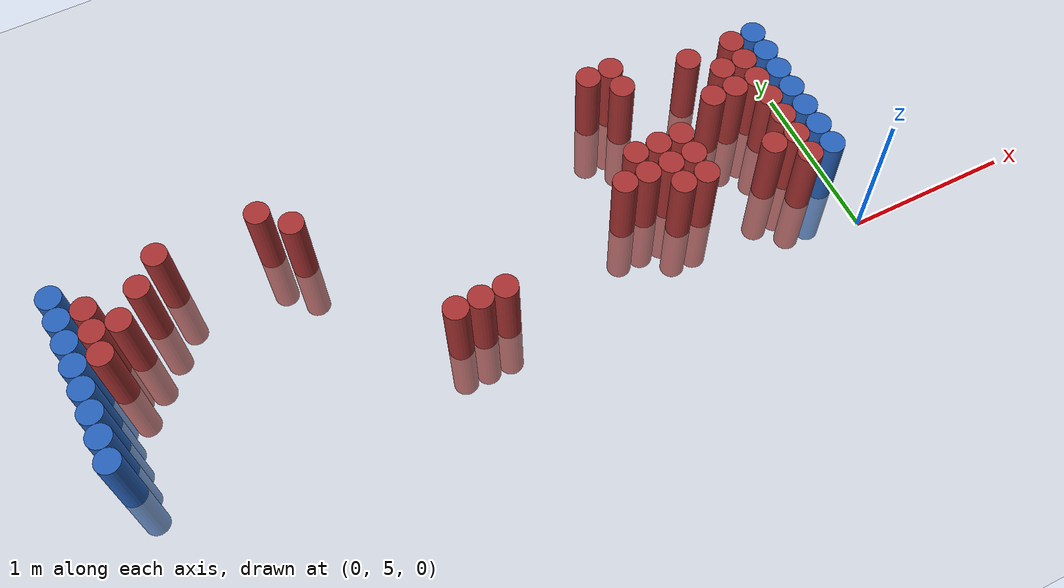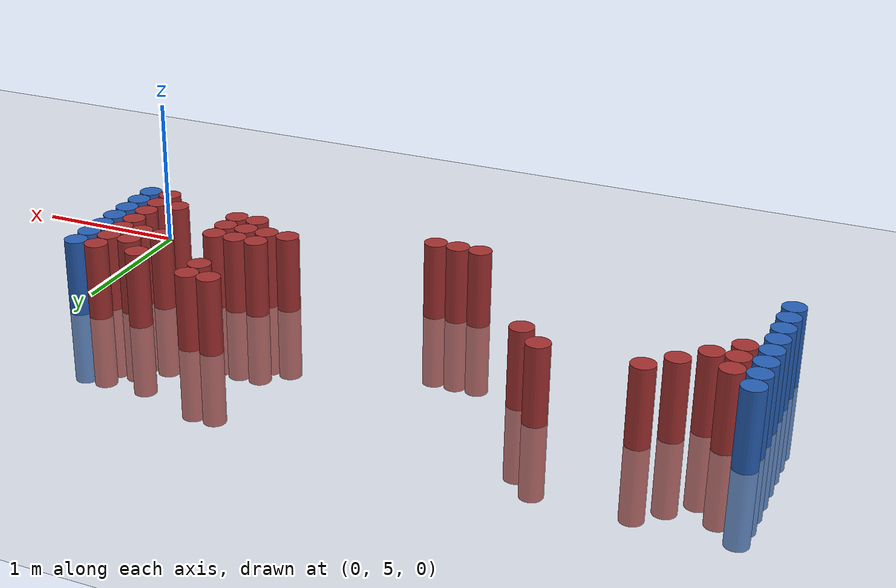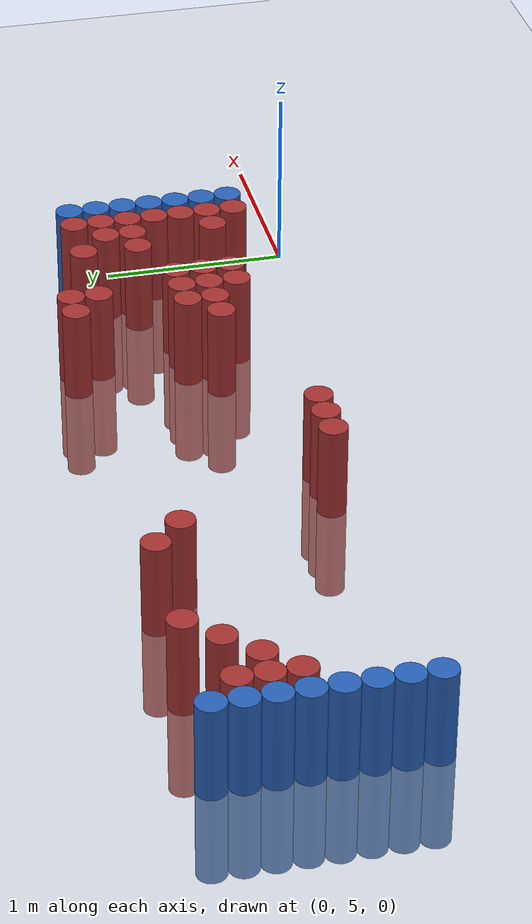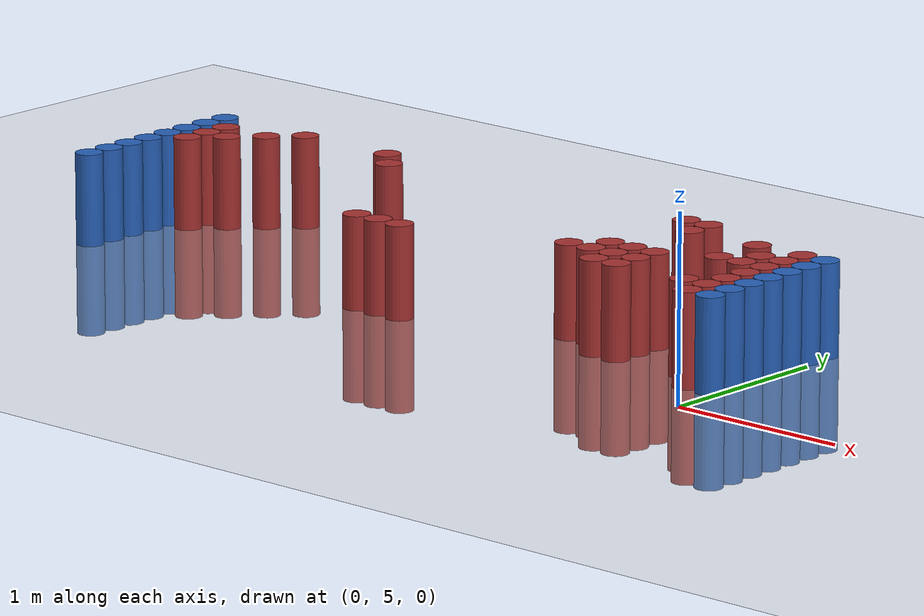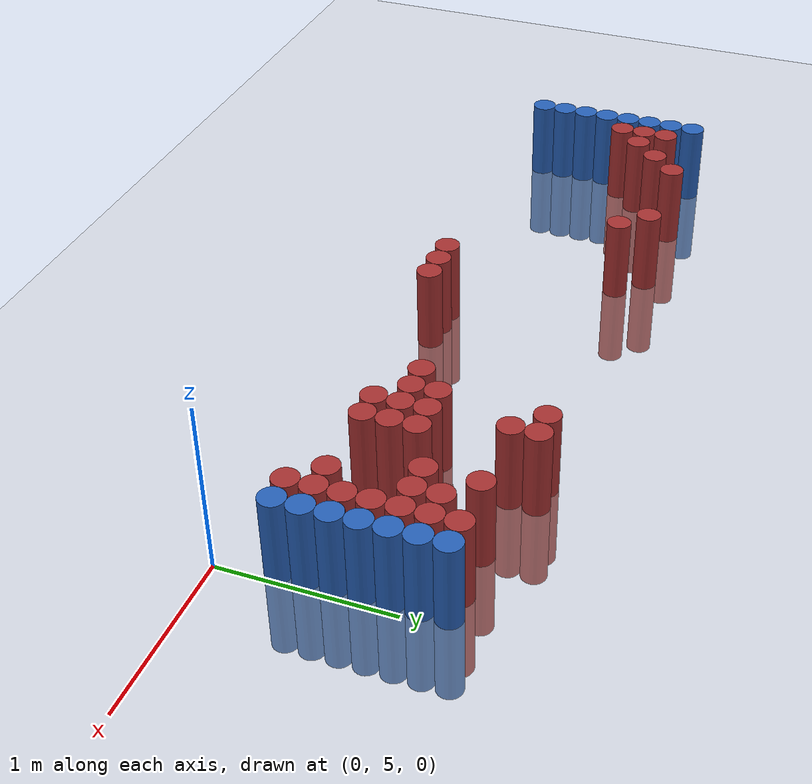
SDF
<sdf version="1.6">
 <world name="default">
  <model name="ground_plane">
   <static>1</static>
   <link name="link">
    <collision name="collision">
     <geometry><plane><normal>0 0 1</normal><size>100 100</size></plane></geometry>
     <surface><friction><ode><mu>100</mu><mu2>50</mu2></ode></friction></surface>
    </collision>
    <visual name="visual">
     <cast_shadows>0</cast_shadows>
     <geometry><plane><normal>0 0 1</normal><size>100 100</size></plane></geometry>
     <material>
      <script><uri>file://media/materials/scripts/gazebo.material</uri><name>Gazebo/Grey</name></script>
     </material>
    </visual>
   </link>
  </model>
  <model name="unit_cylinder_97">
   <static>1</static>
   <pose>-4.425000 5.325000 0.000000 0.000000 0.000000 0.000000</pose>
   <link name="link">
    <inertial>
     <mass>1</mass>
     <inertia><ixx>0.145833</ixx><ixy>0</ixy><ixz>0</ixz><iyy>0.145833</iyy><iyz>0</iyz><izz>0.125</izz></inertia>
    </inertial>
    <collision name="collision">
     <geometry><cylinder><radius>0.075000</radius><length>1</length></cylinder></geometry>
    </collision>
    <visual name="visual">
     <geometry><cylinder><radius>0.075000</radius><length>1</length></cylinder></geometry>
     <material>
      <ambient>0.152000 0.379000 0.720000 1</ambient>
      <diffuse>0.152000 0.379000 0.720000 1</diffuse>
     </material>
     <material>
      <script><name>Gazebo/Grey</name><uri>file://media/materials/scripts/gazebo.material</uri></script>
     </material>
    </visual>
   </link>
  </model>
  <model name="unit_cylinder_98">
   <static>1</static>
   <pose>-4.425000 5.475000 0.000000 0.000000 0.000000 0.000000</pose>
   <link name="link">
    <inertial>
     <mass>1</mass>
     <inertia><ixx>0.145833</ixx><ixy>0</ixy><ixz>0</ixz><iyy>0.145833</iyy><iyz>0</iyz><izz>0.125</izz></inertia>
    </inertial>
    <collision name="collision">
     <geometry><cylinder><radius>0.075000</radius><length>1</length></cylinder></geometry>
    </collision>
    <visual name="visual">
     <geometry><cylinder><radius>0.075000</radius><length>1</length></cylinder></geometry>
     <material>
      <ambient>0.152000 0.379000 0.720000 1</ambient>
      <diffuse>0.152000 0.379000 0.720000 1</diffuse>
     </material>
     <material>
      <script><name>Gazebo/Grey</name><uri>file://media/materials/scripts/gazebo.material</uri></script>
     </material>
    </visual>
   </link>
  </model>
  <model name="unit_cylinder_99">
   <static>1</static>
   <pose>-4.425000 5.625000 0.000000 0.000000 0.000000 0.000000</pose>
   <link name="link">
    <inertial>
     <mass>1</mass>
     <inertia><ixx>0.145833</ixx><ixy>0</ixy><ixz>0</ixz><iyy>0.145833</iyy><iyz>0</iyz><izz>0.125</izz></inertia>
    </inertial>
    <collision name="collision">
     <geometry><cylinder><radius>0.075000</radius><length>1</length></cylinder></geometry>
    </collision>
    <visual name="visual">
     <geometry><cylinder><radius>0.075000</radius><length>1</length></cylinder></geometry>
     <material>
      <ambient>0.152000 0.379000 0.720000 1</ambient>
      <diffuse>0.152000 0.379000 0.720000 1</diffuse>
     </material>
     <material>
      <script><name>Gazebo/Grey</name><uri>file://media/materials/scripts/gazebo.material</uri></script>
     </material>
    </visual>
   </link>
  </model>
  <model name="unit_cylinder_100">
   <static>1</static>
   <pose>-4.425000 5.775000 0.000000 0.000000 0.000000 0.000000</pose>
   <link name="link">
    <inertial>
     <mass>1</mass>
     <inertia><ixx>0.145833</ixx><ixy>0</ixy><ixz>0</ixz><iyy>0.145833</iyy><iyz>0</iyz><izz>0.125</izz></inertia>
    </inertial>
    <collision name="collision">
     <geometry><cylinder><radius>0.075000</radius><length>1</length></cylinder></geometry>
    </collision>
    <visual name="visual">
     <geometry><cylinder><radius>0.075000</radius><length>1</length></cylinder></geometry>
     <material>
      <ambient>0.152000 0.379000 0.720000 1</ambient>
      <diffuse>0.152000 0.379000 0.720000 1</diffuse>
     </material>
     <material>
      <script><name>Gazebo/Grey</name><uri>file://media/materials/scripts/gazebo.material</uri></script>
     </material>
    </visual>
   </link>
  </model>
  <model name="unit_cylinder_101">
   <static>1</static>
   <pose>-4.425000 5.925000 0.000000 0.000000 0.000000 0.000000</pose>
   <link name="link">
    <inertial>
     <mass>1</mass>
     <inertia><ixx>0.145833</ixx><ixy>0</ixy><ixz>0</ixz><iyy>0.145833</iyy><iyz>0</iyz><izz>0.125</izz></inertia>
    </inertial>
    <collision name="collision">
     <geometry><cylinder><radius>0.075000</radius><length>1</length></cylinder></geometry>
    </collision>
    <visual name="visual">
     <geometry><cylinder><radius>0.075000</radius><length>1</length></cylinder></geometry>
     <material>
      <ambient>0.152000 0.379000 0.720000 1</ambient>
      <diffuse>0.152000 0.379000 0.720000 1</diffuse>
     </material>
     <material>
      <script><name>Gazebo/Grey</name><uri>file://media/materials/scripts/gazebo.material</uri></script>
     </material>
    </visual>
   </link>
  </model>
  <model name="unit_cylinder_102">
   <static>1</static>
   <pose>-4.425000 6.075000 0.000000 0.000000 0.000000 0.000000</pose>
   <link name="link">
    <inertial>
     <mass>1</mass>
     <inertia><ixx>0.145833</ixx><ixy>0</ixy><ixz>0</ixz><iyy>0.145833</iyy><iyz>0</iyz><izz>0.125</izz></inertia>
    </inertial>
    <collision name="collision">
     <geometry><cylinder><radius>0.075000</radius><length>1</length></cylinder></geometry>
    </collision>
    <visual name="visual">
     <geometry><cylinder><radius>0.075000</radius><length>1</length></cylinder></geometry>
     <material>
      <ambient>0.152000 0.379000 0.720000 1</ambient>
      <diffuse>0.152000 0.379000 0.720000 1</diffuse>
     </material>
     <material>
      <script><name>Gazebo/Grey</name><uri>file://media/materials/scripts/gazebo.material</uri></script>
     </material>
    </visual>
   </link>
  </model>
  <model name="unit_cylinder_103">
   <static>1</static>
   <pose>-4.425000 6.225000 0.000000 0.000000 0.000000 0.000000</pose>
   <link name="link">
    <inertial>
     <mass>1</mass>
     <inertia><ixx>0.145833</ixx><ixy>0</ixy><ixz>0</ixz><iyy>0.145833</iyy><iyz>0</iyz><izz>0.125</izz></inertia>
    </inertial>
    <collision name="collision">
     <geometry><cylinder><radius>0.075000</radius><length>1</length></cylinder></geometry>
    </collision>
    <visual name="visual">
     <geometry><cylinder><radius>0.075000</radius><length>1</length></cylinder></geometry>
     <material>
      <ambient>0.152000 0.379000 0.720000 1</ambient>
      <diffuse>0.152000 0.379000 0.720000 1</diffuse>
     </material>
     <material>
      <script><name>Gazebo/Grey</name><uri>file://media/materials/scripts/gazebo.material</uri></script>
     </material>
    </visual>
   </link>
  </model>
  <model name="unit_cylinder_104">
   <static>1</static>
   <pose>-4.425000 6.375000 0.000000 0.000000 0.000000 0.000000</pose>
   <link name="link">
    <inertial>
     <mass>1</mass>
     <inertia><ixx>0.145833</ixx><ixy>0</ixy><ixz>0</ixz><iyy>0.145833</iyy><iyz>0</iyz><izz>0.125</izz></inertia>
    </inertial>
    <collision name="collision">
     <geometry><cylinder><radius>0.075000</radius><length>1</length></cylinder></geometry>
    </collision>
    <visual name="visual">
     <geometry><cylinder><radius>0.075000</radius><length>1</length></cylinder></geometry>
     <material>
      <ambient>0.152000 0.379000 0.720000 1</ambient>
      <diffuse>0.152000 0.379000 0.720000 1</diffuse>
     </material>
     <material>
      <script><name>Gazebo/Grey</name><uri>file://media/materials/scripts/gazebo.material</uri></script>
     </material>
    </visual>
   </link>
  </model>
  <model name="unit_cylinder_126">
   <static>1</static>
   <pose>-4.275000 5.925000 0.000000 0.000000 0.000000 0.000000</pose>
   <link name="link">
    <inertial>
     <mass>1</mass>
     <inertia><ixx>0.145833</ixx><ixy>0</ixy><ixz>0</ixz><iyy>0.145833</iyy><iyz>0</iyz><izz>0.125</izz></inertia>
    </inertial>
    <collision name="collision">
     <geometry><cylinder><radius>0.075000</radius><length>1</length></cylinder></geometry>
    </collision>
    <visual name="visual">
     <geometry><cylinder><radius>0.075000</radius><length>1</length></cylinder></geometry>
     <material>
      <ambient>0.648000 0.192000 0.192000 1</ambient>
      <diffuse>0.648000 0.192000 0.192000 1</diffuse>
     </material>
     <material>
      <script><name>Gazebo/Grey</name><uri>file://media/materials/scripts/gazebo.material</uri></script>
     </material>
    </visual>
   </link>
  </model>
  <model name="unit_cylinder_127">
   <static>1</static>
   <pose>-4.275000 6.075000 0.000000 0.000000 0.000000 0.000000</pose>
   <link name="link">
    <inertial>
     <mass>1</mass>
     <inertia><ixx>0.145833</ixx><ixy>0</ixy><ixz>0</ixz><iyy>0.145833</iyy><iyz>0</iyz><izz>0.125</izz></inertia>
    </inertial>
    <collision name="collision">
     <geometry><cylinder><radius>0.075000</radius><length>1</length></cylinder></geometry>
    </collision>
    <visual name="visual">
     <geometry><cylinder><radius>0.075000</radius><length>1</length></cylinder></geometry>
     <material>
      <ambient>0.648000 0.192000 0.192000 1</ambient>
      <diffuse>0.648000 0.192000 0.192000 1</diffuse>
     </material>
     <material>
      <script><name>Gazebo/Grey</name><uri>file://media/materials/scripts/gazebo.material</uri></script>
     </material>
    </visual>
   </link>
  </model>
  <model name="unit_cylinder_128">
   <static>1</static>
   <pose>-4.275000 6.225000 0.000000 0.000000 0.000000 0.000000</pose>
   <link name="link">
    <inertial>
     <mass>1</mass>
     <inertia><ixx>0.145833</ixx><ixy>0</ixy><ixz>0</ixz><iyy>0.145833</iyy><iyz>0</iyz><izz>0.125</izz></inertia>
    </inertial>
    <collision name="collision">
     <geometry><cylinder><radius>0.075000</radius><length>1</length></cylinder></geometry>
    </collision>
    <visual name="visual">
     <geometry><cylinder><radius>0.075000</radius><length>1</length></cylinder></geometry>
     <material>
      <ambient>0.648000 0.192000 0.192000 1</ambient>
      <diffuse>0.648000 0.192000 0.192000 1</diffuse>
     </material>
     <material>
      <script><name>Gazebo/Grey</name><uri>file://media/materials/scripts/gazebo.material</uri></script>
     </material>
    </visual>
   </link>
  </model>
  <model name="unit_cylinder_139">
   <static>1</static>
   <pose>-4.125000 6.075000 0.000000 0.000000 0.000000 0.000000</pose>
   <link name="link">
    <inertial>
     <mass>1</mass>
     <inertia><ixx>0.145833</ixx><ixy>0</ixy><ixz>0</ixz><iyy>0.145833</iyy><iyz>0</iyz><izz>0.125</izz></inertia>
    </inertial>
    <collision name="collision">
     <geometry><cylinder><radius>0.075000</radius><length>1</length></cylinder></geometry>
    </collision>
    <visual name="visual">
     <geometry><cylinder><radius>0.075000</radius><length>1</length></cylinder></geometry>
     <material>
      <ambient>0.648000 0.192000 0.192000 1</ambient>
      <diffuse>0.648000 0.192000 0.192000 1</diffuse>
     </material>
     <material>
      <script><name>Gazebo/Grey</name><uri>file://media/materials/scripts/gazebo.material</uri></script>
     </material>
    </visual>
   </link>
  </model>
  <model name="unit_cylinder_145">
   <static>1</static>
   <pose>-3.975000 6.225000 0.000000 0.000000 0.000000 0.000000</pose>
   <link name="link">
    <inertial>
     <mass>1</mass>
     <inertia><ixx>0.145833</ixx><ixy>0</ixy><ixz>0</ixz><iyy>0.145833</iyy><iyz>0</iyz><izz>0.125</izz></inertia>
    </inertial>
    <collision name="collision">
     <geometry><cylinder><radius>0.075000</radius><length>1</length></cylinder></geometry>
    </collision>
    <visual name="visual">
     <geometry><cylinder><radius>0.075000</radius><length>1</length></cylinder></geometry>
     <material>
      <ambient>0.648000 0.192000 0.192000 1</ambient>
      <diffuse>0.648000 0.192000 0.192000 1</diffuse>
     </material>
     <material>
      <script><name>Gazebo/Grey</name><uri>file://media/materials/scripts/gazebo.material</uri></script>
     </material>
    </visual>
   </link>
  </model>
  <model name="unit_cylinder_149">
   <static>1</static>
   <pose>-3.825000 6.375000 0.000000 0.000000 0.000000 0.000000</pose>
   <link name="link">
    <inertial>
     <mass>1</mass>
     <inertia><ixx>0.145833</ixx><ixy>0</ixy><ixz>0</ixz><iyy>0.145833</iyy><iyz>0</iyz><izz>0.125</izz></inertia>
    </inertial>
    <collision name="collision">
     <geometry><cylinder><radius>0.075000</radius><length>1</length></cylinder></geometry>
    </collision>
    <visual name="visual">
     <geometry><cylinder><radius>0.075000</radius><length>1</length></cylinder></geometry>
     <material>
      <ambient>0.648000 0.192000 0.192000 1</ambient>
      <diffuse>0.648000 0.192000 0.192000 1</diffuse>
     </material>
     <material>
      <script><name>Gazebo/Grey</name><uri>file://media/materials/scripts/gazebo.material</uri></script>
     </material>
    </visual>
   </link>
  </model>
  <model name="unit_cylinder_169">
   <static>1</static>
   <pose>-3.225000 6.375000 0.000000 0.000000 0.000000 0.000000</pose>
   <link name="link">
    <inertial>
     <mass>1</mass>
     <inertia><ixx>0.145833</ixx><ixy>0</ixy><ixz>0</ixz><iyy>0.145833</iyy><iyz>0</iyz><izz>0.125</izz></inertia>
    </inertial>
    <collision name="collision">
     <geometry><cylinder><radius>0.075000</radius><length>1</length></cylinder></geometry>
    </collision>
    <visual name="visual">
     <geometry><cylinder><radius>0.075000</radius><length>1</length></cylinder></geometry>
     <material>
      <ambient>0.648000 0.192000 0.192000 1</ambient>
      <diffuse>0.648000 0.192000 0.192000 1</diffuse>
     </material>
     <material>
      <script><name>Gazebo/Grey</name><uri>file://media/materials/scripts/gazebo.material</uri></script>
     </material>
    </visual>
   </link>
  </model>
  <model name="unit_cylinder_170">
   <static>1</static>
   <pose>-3.075000 6.225000 0.000000 0.000000 0.000000 0.000000</pose>
   <link name="link">
    <inertial>
     <mass>1</mass>
     <inertia><ixx>0.145833</ixx><ixy>0</ixy><ixz>0</ixz><iyy>0.145833</iyy><iyz>0</iyz><izz>0.125</izz></inertia>
    </inertial>
    <collision name="collision">
     <geometry><cylinder><radius>0.075000</radius><length>1</length></cylinder></geometry>
    </collision>
    <visual name="visual">
     <geometry><cylinder><radius>0.075000</radius><length>1</length></cylinder></geometry>
     <material>
      <ambient>0.648000 0.192000 0.192000 1</ambient>
      <diffuse>0.648000 0.192000 0.192000 1</diffuse>
     </material>
     <material>
      <script><name>Gazebo/Grey</name><uri>file://media/materials/scripts/gazebo.material</uri></script>
     </material>
    </visual>
   </link>
  </model>
  <model name="unit_cylinder_173">
   <static>1</static>
   <pose>-2.475000 5.325000 0.000000 0.000000 0.000000 0.000000</pose>
   <link name="link">
    <inertial>
     <mass>1</mass>
     <inertia><ixx>0.145833</ixx><ixy>0</ixy><ixz>0</ixz><iyy>0.145833</iyy><iyz>0</iyz><izz>0.125</izz></inertia>
    </inertial>
    <collision name="collision">
     <geometry><cylinder><radius>0.075000</radius><length>1</length></cylinder></geometry>
    </collision>
    <visual name="visual">
     <geometry><cylinder><radius>0.075000</radius><length>1</length></cylinder></geometry>
     <material>
      <ambient>0.648000 0.192000 0.192000 1</ambient>
      <diffuse>0.648000 0.192000 0.192000 1</diffuse>
     </material>
     <material>
      <script><name>Gazebo/Grey</name><uri>file://media/materials/scripts/gazebo.material</uri></script>
     </material>
    </visual>
   </link>
  </model>
  <model name="unit_cylinder_176">
   <static>1</static>
   <pose>-2.325000 5.325000 0.000000 0.000000 0.000000 0.000000</pose>
   <link name="link">
    <inertial>
     <mass>1</mass>
     <inertia><ixx>0.145833</ixx><ixy>0</ixy><ixz>0</ixz><iyy>0.145833</iyy><iyz>0</iyz><izz>0.125</izz></inertia>
    </inertial>
    <collision name="collision">
     <geometry><cylinder><radius>0.075000</radius><length>1</length></cylinder></geometry>
    </collision>
    <visual name="visual">
     <geometry><cylinder><radius>0.075000</radius><length>1</length></cylinder></geometry>
     <material>
      <ambient>0.648000 0.192000 0.192000 1</ambient>
      <diffuse>0.648000 0.192000 0.192000 1</diffuse>
     </material>
     <material>
      <script><name>Gazebo/Grey</name><uri>file://media/materials/scripts/gazebo.material</uri></script>
     </material>
    </visual>
   </link>
  </model>
  <model name="unit_cylinder_179">
   <static>1</static>
   <pose>-2.175000 5.325000 0.000000 0.000000 0.000000 0.000000</pose>
   <link name="link">
    <inertial>
     <mass>1</mass>
     <inertia><ixx>0.145833</ixx><ixy>0</ixy><ixz>0</ixz><iyy>0.145833</iyy><iyz>0</iyz><izz>0.125</izz></inertia>
    </inertial>
    <collision name="collision">
     <geometry><cylinder><radius>0.075000</radius><length>1</length></cylinder></geometry>
    </collision>
    <visual name="visual">
     <geometry><cylinder><radius>0.075000</radius><length>1</length></cylinder></geometry>
     <material>
      <ambient>0.648000 0.192000 0.192000 1</ambient>
      <diffuse>0.648000 0.192000 0.192000 1</diffuse>
     </material>
     <material>
      <script><name>Gazebo/Grey</name><uri>file://media/materials/scripts/gazebo.material</uri></script>
     </material>
    </visual>
   </link>
  </model>
  <model name="unit_cylinder_189">
   <static>1</static>
   <pose>-1.275000 5.625000 0.000000 0.000000 0.000000 0.000000</pose>
   <link name="link">
    <inertial>
     <mass>1</mass>
     <inertia><ixx>0.145833</ixx><ixy>0</ixy><ixz>0</ixz><iyy>0.145833</iyy><iyz>0</iyz><izz>0.125</izz></inertia>
    </inertial>
    <collision name="collision">
     <geometry><cylinder><radius>0.075000</radius><length>1</length></cylinder></geometry>
    </collision>
    <visual name="visual">
     <geometry><cylinder><radius>0.075000</radius><length>1</length></cylinder></geometry>
     <material>
      <ambient>0.648000 0.192000 0.192000 1</ambient>
      <diffuse>0.648000 0.192000 0.192000 1</diffuse>
     </material>
     <material>
      <script><name>Gazebo/Grey</name><uri>file://media/materials/scripts/gazebo.material</uri></script>
     </material>
    </visual>
   </link>
  </model>
  <model name="unit_cylinder_196">
   <static>1</static>
   <pose>-1.125000 5.625000 0.000000 0.000000 0.000000 0.000000</pose>
   <link name="link">
    <inertial>
     <mass>1</mass>
     <inertia><ixx>0.145833</ixx><ixy>0</ixy><ixz>0</ixz><iyy>0.145833</iyy><iyz>0</iyz><izz>0.125</izz></inertia>
    </inertial>
    <collision name="collision">
     <geometry><cylinder><radius>0.075000</radius><length>1</length></cylinder></geometry>
    </collision>
    <visual name="visual">
     <geometry><cylinder><radius>0.075000</radius><length>1</length></cylinder></geometry>
     <material>
      <ambient>0.648000 0.192000 0.192000 1</ambient>
      <diffuse>0.648000 0.192000 0.192000 1</diffuse>
     </material>
     <material>
      <script><name>Gazebo/Grey</name><uri>file://media/materials/scripts/gazebo.material</uri></script>
     </material>
    </visual>
   </link>
  </model>
  <model name="unit_cylinder_197">
   <static>1</static>
   <pose>-1.125000 5.775000 0.000000 0.000000 0.000000 0.000000</pose>
   <link name="link">
    <inertial>
     <mass>1</mass>
     <inertia><ixx>0.145833</ixx><ixy>0</ixy><ixz>0</ixz><iyy>0.145833</iyy><iyz>0</iyz><izz>0.125</izz></inertia>
    </inertial>
    <collision name="collision">
     <geometry><cylinder><radius>0.075000</radius><length>1</length></cylinder></geometry>
    </collision>
    <visual name="visual">
     <geometry><cylinder><radius>0.075000</radius><length>1</length></cylinder></geometry>
     <material>
      <ambient>0.648000 0.192000 0.192000 1</ambient>
      <diffuse>0.648000 0.192000 0.192000 1</diffuse>
     </material>
     <material>
      <script><name>Gazebo/Grey</name><uri>file://media/materials/scripts/gazebo.material</uri></script>
     </material>
    </visual>
   </link>
  </model>
  <model name="unit_cylinder_198">
   <static>1</static>
   <pose>-1.125000 6.375000 0.000000 0.000000 0.000000 0.000000</pose>
   <link name="link">
    <inertial>
     <mass>1</mass>
     <inertia><ixx>0.145833</ixx><ixy>0</ixy><ixz>0</ixz><iyy>0.145833</iyy><iyz>0</iyz><izz>0.125</izz></inertia>
    </inertial>
    <collision name="collision">
     <geometry><cylinder><radius>0.075000</radius><length>1</length></cylinder></geometry>
    </collision>
    <visual name="visual">
     <geometry><cylinder><radius>0.075000</radius><length>1</length></cylinder></geometry>
     <material>
      <ambient>0.648000 0.192000 0.192000 1</ambient>
      <diffuse>0.648000 0.192000 0.192000 1</diffuse>
     </material>
     <material>
      <script><name>Gazebo/Grey</name><uri>file://media/materials/scripts/gazebo.material</uri></script>
     </material>
    </visual>
   </link>
  </model>
  <model name="unit_cylinder_205">
   <static>1</static>
   <pose>-0.975000 5.475000 0.000000 0.000000 0.000000 0.000000</pose>
   <link name="link">
    <inertial>
     <mass>1</mass>
     <inertia><ixx>0.145833</ixx><ixy>0</ixy><ixz>0</ixz><iyy>0.145833</iyy><iyz>0</iyz><izz>0.125</izz></inertia>
    </inertial>
    <collision name="collision">
     <geometry><cylinder><radius>0.075000</radius><length>1</length></cylinder></geometry>
    </collision>
    <visual name="visual">
     <geometry><cylinder><radius>0.075000</radius><length>1</length></cylinder></geometry>
     <material>
      <ambient>0.648000 0.192000 0.192000 1</ambient>
      <diffuse>0.648000 0.192000 0.192000 1</diffuse>
     </material>
     <material>
      <script><name>Gazebo/Grey</name><uri>file://media/materials/scripts/gazebo.material</uri></script>
     </material>
    </visual>
   </link>
  </model>
  <model name="unit_cylinder_206">
   <static>1</static>
   <pose>-0.975000 5.625000 0.000000 0.000000 0.000000 0.000000</pose>
   <link name="link">
    <inertial>
     <mass>1</mass>
     <inertia><ixx>0.145833</ixx><ixy>0</ixy><ixz>0</ixz><iyy>0.145833</iyy><iyz>0</iyz><izz>0.125</izz></inertia>
    </inertial>
    <collision name="collision">
     <geometry><cylinder><radius>0.075000</radius><length>1</length></cylinder></geometry>
    </collision>
    <visual name="visual">
     <geometry><cylinder><radius>0.075000</radius><length>1</length></cylinder></geometry>
     <material>
      <ambient>0.648000 0.192000 0.192000 1</ambient>
      <diffuse>0.648000 0.192000 0.192000 1</diffuse>
     </material>
     <material>
      <script><name>Gazebo/Grey</name><uri>file://media/materials/scripts/gazebo.material</uri></script>
     </material>
    </visual>
   </link>
  </model>
  <model name="unit_cylinder_207">
   <static>1</static>
   <pose>-0.975000 5.775000 0.000000 0.000000 0.000000 0.000000</pose>
   <link name="link">
    <inertial>
     <mass>1</mass>
     <inertia><ixx>0.145833</ixx><ixy>0</ixy><ixz>0</ixz><iyy>0.145833</iyy><iyz>0</iyz><izz>0.125</izz></inertia>
    </inertial>
    <collision name="collision">
     <geometry><cylinder><radius>0.075000</radius><length>1</length></cylinder></geometry>
    </collision>
    <visual name="visual">
     <geometry><cylinder><radius>0.075000</radius><length>1</length></cylinder></geometry>
     <material>
      <ambient>0.648000 0.192000 0.192000 1</ambient>
      <diffuse>0.648000 0.192000 0.192000 1</diffuse>
     </material>
     <material>
      <script><name>Gazebo/Grey</name><uri>file://media/materials/scripts/gazebo.material</uri></script>
     </material>
    </visual>
   </link>
  </model>
  <model name="unit_cylinder_208">
   <static>1</static>
   <pose>-0.975000 6.225000 0.000000 0.000000 0.000000 0.000000</pose>
   <link name="link">
    <inertial>
     <mass>1</mass>
     <inertia><ixx>0.145833</ixx><ixy>0</ixy><ixz>0</ixz><iyy>0.145833</iyy><iyz>0</iyz><izz>0.125</izz></inertia>
    </inertial>
    <collision name="collision">
     <geometry><cylinder><radius>0.075000</radius><length>1</length></cylinder></geometry>
    </collision>
    <visual name="visual">
     <geometry><cylinder><radius>0.075000</radius><length>1</length></cylinder></geometry>
     <material>
      <ambient>0.648000 0.192000 0.192000 1</ambient>
      <diffuse>0.648000 0.192000 0.192000 1</diffuse>
     </material>
     <material>
      <script><name>Gazebo/Grey</name><uri>file://media/materials/scripts/gazebo.material</uri></script>
     </material>
    </visual>
   </link>
  </model>
  <model name="unit_cylinder_209">
   <static>1</static>
   <pose>-0.975000 6.375000 0.000000 0.000000 0.000000 0.000000</pose>
   <link name="link">
    <inertial>
     <mass>1</mass>
     <inertia><ixx>0.145833</ixx><ixy>0</ixy><ixz>0</ixz><iyy>0.145833</iyy><iyz>0</iyz><izz>0.125</izz></inertia>
    </inertial>
    <collision name="collision">
     <geometry><cylinder><radius>0.075000</radius><length>1</length></cylinder></geometry>
    </collision>
    <visual name="visual">
     <geometry><cylinder><radius>0.075000</radius><length>1</length></cylinder></geometry>
     <material>
      <ambient>0.648000 0.192000 0.192000 1</ambient>
      <diffuse>0.648000 0.192000 0.192000 1</diffuse>
     </material>
     <material>
      <script><name>Gazebo/Grey</name><uri>file://media/materials/scripts/gazebo.material</uri></script>
     </material>
    </visual>
   </link>
  </model>
  <model name="unit_cylinder_217">
   <static>1</static>
   <pose>-0.825000 5.475000 0.000000 0.000000 0.000000 0.000000</pose>
   <link name="link">
    <inertial>
     <mass>1</mass>
     <inertia><ixx>0.145833</ixx><ixy>0</ixy><ixz>0</ixz><iyy>0.145833</iyy><iyz>0</iyz><izz>0.125</izz></inertia>
    </inertial>
    <collision name="collision">
     <geometry><cylinder><radius>0.075000</radius><length>1</length></cylinder></geometry>
    </collision>
    <visual name="visual">
     <geometry><cylinder><radius>0.075000</radius><length>1</length></cylinder></geometry>
     <material>
      <ambient>0.648000 0.192000 0.192000 1</ambient>
      <diffuse>0.648000 0.192000 0.192000 1</diffuse>
     </material>
     <material>
      <script><name>Gazebo/Grey</name><uri>file://media/materials/scripts/gazebo.material</uri></script>
     </material>
    </visual>
   </link>
  </model>
  <model name="unit_cylinder_218">
   <static>1</static>
   <pose>-0.825000 5.625000 0.000000 0.000000 0.000000 0.000000</pose>
   <link name="link">
    <inertial>
     <mass>1</mass>
     <inertia><ixx>0.145833</ixx><ixy>0</ixy><ixz>0</ixz><iyy>0.145833</iyy><iyz>0</iyz><izz>0.125</izz></inertia>
    </inertial>
    <collision name="collision">
     <geometry><cylinder><radius>0.075000</radius><length>1</length></cylinder></geometry>
    </collision>
    <visual name="visual">
     <geometry><cylinder><radius>0.075000</radius><length>1</length></cylinder></geometry>
     <material>
      <ambient>0.648000 0.192000 0.192000 1</ambient>
      <diffuse>0.648000 0.192000 0.192000 1</diffuse>
     </material>
     <material>
      <script><name>Gazebo/Grey</name><uri>file://media/materials/scripts/gazebo.material</uri></script>
     </material>
    </visual>
   </link>
  </model>
  <model name="unit_cylinder_219">
   <static>1</static>
   <pose>-0.825000 5.775000 0.000000 0.000000 0.000000 0.000000</pose>
   <link name="link">
    <inertial>
     <mass>1</mass>
     <inertia><ixx>0.145833</ixx><ixy>0</ixy><ixz>0</ixz><iyy>0.145833</iyy><iyz>0</iyz><izz>0.125</izz></inertia>
    </inertial>
    <collision name="collision">
     <geometry><cylinder><radius>0.075000</radius><length>1</length></cylinder></geometry>
    </collision>
    <visual name="visual">
     <geometry><cylinder><radius>0.075000</radius><length>1</length></cylinder></geometry>
     <material>
      <ambient>0.648000 0.192000 0.192000 1</ambient>
      <diffuse>0.648000 0.192000 0.192000 1</diffuse>
     </material>
     <material>
      <script><name>Gazebo/Grey</name><uri>file://media/materials/scripts/gazebo.material</uri></script>
     </material>
    </visual>
   </link>
  </model>
  <model name="unit_cylinder_237">
   <static>1</static>
   <pose>-0.525000 5.925000 0.000000 0.000000 0.000000 0.000000</pose>
   <link name="link">
    <inertial>
     <mass>1</mass>
     <inertia><ixx>0.145833</ixx><ixy>0</ixy><ixz>0</ixz><iyy>0.145833</iyy><iyz>0</iyz><izz>0.125</izz></inertia>
    </inertial>
    <collision name="collision">
     <geometry><cylinder><radius>0.075000</radius><length>1</length></cylinder></geometry>
    </collision>
    <visual name="visual">
     <geometry><cylinder><radius>0.075000</radius><length>1</length></cylinder></geometry>
     <material>
      <ambient>0.648000 0.192000 0.192000 1</ambient>
      <diffuse>0.648000 0.192000 0.192000 1</diffuse>
     </material>
     <material>
      <script><name>Gazebo/Grey</name><uri>file://media/materials/scripts/gazebo.material</uri></script>
     </material>
    </visual>
   </link>
  </model>
  <model name="unit_cylinder_238">
   <static>1</static>
   <pose>-0.525000 6.225000 0.000000 0.000000 0.000000 0.000000</pose>
   <link name="link">
    <inertial>
     <mass>1</mass>
     <inertia><ixx>0.145833</ixx><ixy>0</ixy><ixz>0</ixz><iyy>0.145833</iyy><iyz>0</iyz><izz>0.125</izz></inertia>
    </inertial>
    <collision name="collision">
     <geometry><cylinder><radius>0.075000</radius><length>1</length></cylinder></geometry>
    </collision>
    <visual name="visual">
     <geometry><cylinder><radius>0.075000</radius><length>1</length></cylinder></geometry>
     <material>
      <ambient>0.648000 0.192000 0.192000 1</ambient>
      <diffuse>0.648000 0.192000 0.192000 1</diffuse>
     </material>
     <material>
      <script><name>Gazebo/Grey</name><uri>file://media/materials/scripts/gazebo.material</uri></script>
     </material>
    </visual>
   </link>
  </model>
  <model name="unit_cylinder_246">
   <static>1</static>
   <pose>-0.375000 5.475000 0.000000 0.000000 0.000000 0.000000</pose>
   <link name="link">
    <inertial>
     <mass>1</mass>
     <inertia><ixx>0.145833</ixx><ixy>0</ixy><ixz>0</ixz><iyy>0.145833</iyy><iyz>0</iyz><izz>0.125</izz></inertia>
    </inertial>
    <collision name="collision">
     <geometry><cylinder><radius>0.075000</radius><length>1</length></cylinder></geometry>
    </collision>
    <visual name="visual">
     <geometry><cylinder><radius>0.075000</radius><length>1</length></cylinder></geometry>
     <material>
      <ambient>0.648000 0.192000 0.192000 1</ambient>
      <diffuse>0.648000 0.192000 0.192000 1</diffuse>
     </material>
     <material>
      <script><name>Gazebo/Grey</name><uri>file://media/materials/scripts/gazebo.material</uri></script>
     </material>
    </visual>
   </link>
  </model>
  <model name="unit_cylinder_247">
   <static>1</static>
   <pose>-0.375000 5.925000 0.000000 0.000000 0.000000 0.000000</pose>
   <link name="link">
    <inertial>
     <mass>1</mass>
     <inertia><ixx>0.145833</ixx><ixy>0</ixy><ixz>0</ixz><iyy>0.145833</iyy><iyz>0</iyz><izz>0.125</izz></inertia>
    </inertial>
    <collision name="collision">
     <geometry><cylinder><radius>0.075000</radius><length>1</length></cylinder></geometry>
    </collision>
    <visual name="visual">
     <geometry><cylinder><radius>0.075000</radius><length>1</length></cylinder></geometry>
     <material>
      <ambient>0.648000 0.192000 0.192000 1</ambient>
      <diffuse>0.648000 0.192000 0.192000 1</diffuse>
     </material>
     <material>
      <script><name>Gazebo/Grey</name><uri>file://media/materials/scripts/gazebo.material</uri></script>
     </material>
    </visual>
   </link>
  </model>
  <model name="unit_cylinder_248">
   <static>1</static>
   <pose>-0.375000 6.075000 0.000000 0.000000 0.000000 0.000000</pose>
   <link name="link">
    <inertial>
     <mass>1</mass>
     <inertia><ixx>0.145833</ixx><ixy>0</ixy><ixz>0</ixz><iyy>0.145833</iyy><iyz>0</iyz><izz>0.125</izz></inertia>
    </inertial>
    <collision name="collision">
     <geometry><cylinder><radius>0.075000</radius><length>1</length></cylinder></geometry>
    </collision>
    <visual name="visual">
     <geometry><cylinder><radius>0.075000</radius><length>1</length></cylinder></geometry>
     <material>
      <ambient>0.648000 0.192000 0.192000 1</ambient>
      <diffuse>0.648000 0.192000 0.192000 1</diffuse>
     </material>
     <material>
      <script><name>Gazebo/Grey</name><uri>file://media/materials/scripts/gazebo.material</uri></script>
     </material>
    </visual>
   </link>
  </model>
  <model name="unit_cylinder_254">
   <static>1</static>
   <pose>-0.225000 5.325000 0.000000 0.000000 0.000000 0.000000</pose>
   <link name="link">
    <inertial>
     <mass>1</mass>
     <inertia><ixx>0.145833</ixx><ixy>0</ixy><ixz>0</ixz><iyy>0.145833</iyy><iyz>0</iyz><izz>0.125</izz></inertia>
    </inertial>
    <collision name="collision">
     <geometry><cylinder><radius>0.075000</radius><length>1</length></cylinder></geometry>
    </collision>
    <visual name="visual">
     <geometry><cylinder><radius>0.075000</radius><length>1</length></cylinder></geometry>
     <material>
      <ambient>0.648000 0.192000 0.192000 1</ambient>
      <diffuse>0.648000 0.192000 0.192000 1</diffuse>
     </material>
     <material>
      <script><name>Gazebo/Grey</name><uri>file://media/materials/scripts/gazebo.material</uri></script>
     </material>
    </visual>
   </link>
  </model>
  <model name="unit_cylinder_255">
   <static>1</static>
   <pose>-0.225000 5.475000 0.000000 0.000000 0.000000 0.000000</pose>
   <link name="link">
    <inertial>
     <mass>1</mass>
     <inertia><ixx>0.145833</ixx><ixy>0</ixy><ixz>0</ixz><iyy>0.145833</iyy><iyz>0</iyz><izz>0.125</izz></inertia>
    </inertial>
    <collision name="collision">
     <geometry><cylinder><radius>0.075000</radius><length>1</length></cylinder></geometry>
    </collision>
    <visual name="visual">
     <geometry><cylinder><radius>0.075000</radius><length>1</length></cylinder></geometry>
     <material>
      <ambient>0.648000 0.192000 0.192000 1</ambient>
      <diffuse>0.648000 0.192000 0.192000 1</diffuse>
     </material>
     <material>
      <script><name>Gazebo/Grey</name><uri>file://media/materials/scripts/gazebo.material</uri></script>
     </material>
    </visual>
   </link>
  </model>
  <model name="unit_cylinder_256">
   <static>1</static>
   <pose>-0.225000 5.625000 0.000000 0.000000 0.000000 0.000000</pose>
   <link name="link">
    <inertial>
     <mass>1</mass>
     <inertia><ixx>0.145833</ixx><ixy>0</ixy><ixz>0</ixz><iyy>0.145833</iyy><iyz>0</iyz><izz>0.125</izz></inertia>
    </inertial>
    <collision name="collision">
     <geometry><cylinder><radius>0.075000</radius><length>1</length></cylinder></geometry>
    </collision>
    <visual name="visual">
     <geometry><cylinder><radius>0.075000</radius><length>1</length></cylinder></geometry>
     <material>
      <ambient>0.648000 0.192000 0.192000 1</ambient>
      <diffuse>0.648000 0.192000 0.192000 1</diffuse>
     </material>
     <material>
      <script><name>Gazebo/Grey</name><uri>file://media/materials/scripts/gazebo.material</uri></script>
     </material>
    </visual>
   </link>
  </model>
  <model name="unit_cylinder_257">
   <static>1</static>
   <pose>-0.225000 5.775000 0.000000 0.000000 0.000000 0.000000</pose>
   <link name="link">
    <inertial>
     <mass>1</mass>
     <inertia><ixx>0.145833</ixx><ixy>0</ixy><ixz>0</ixz><iyy>0.145833</iyy><iyz>0</iyz><izz>0.125</izz></inertia>
    </inertial>
    <collision name="collision">
     <geometry><cylinder><radius>0.075000</radius><length>1</length></cylinder></geometry>
    </collision>
    <visual name="visual">
     <geometry><cylinder><radius>0.075000</radius><length>1</length></cylinder></geometry>
     <material>
      <ambient>0.648000 0.192000 0.192000 1</ambient>
      <diffuse>0.648000 0.192000 0.192000 1</diffuse>
     </material>
     <material>
      <script><name>Gazebo/Grey</name><uri>file://media/materials/scripts/gazebo.material</uri></script>
     </material>
    </visual>
   </link>
  </model>
  <model name="unit_cylinder_258">
   <static>1</static>
   <pose>-0.225000 5.925000 0.000000 0.000000 0.000000 0.000000</pose>
   <link name="link">
    <inertial>
     <mass>1</mass>
     <inertia><ixx>0.145833</ixx><ixy>0</ixy><ixz>0</ixz><iyy>0.145833</iyy><iyz>0</iyz><izz>0.125</izz></inertia>
    </inertial>
    <collision name="collision">
     <geometry><cylinder><radius>0.075000</radius><length>1</length></cylinder></geometry>
    </collision>
    <visual name="visual">
     <geometry><cylinder><radius>0.075000</radius><length>1</length></cylinder></geometry>
     <material>
      <ambient>0.648000 0.192000 0.192000 1</ambient>
      <diffuse>0.648000 0.192000 0.192000 1</diffuse>
     </material>
     <material>
      <script><name>Gazebo/Grey</name><uri>file://media/materials/scripts/gazebo.material</uri></script>
     </material>
    </visual>
   </link>
  </model>
  <model name="unit_cylinder_259">
   <static>1</static>
   <pose>-0.225000 6.075000 0.000000 0.000000 0.000000 0.000000</pose>
   <link name="link">
    <inertial>
     <mass>1</mass>
     <inertia><ixx>0.145833</ixx><ixy>0</ixy><ixz>0</ixz><iyy>0.145833</iyy><iyz>0</iyz><izz>0.125</izz></inertia>
    </inertial>
    <collision name="collision">
     <geometry><cylinder><radius>0.075000</radius><length>1</length></cylinder></geometry>
    </collision>
    <visual name="visual">
     <geometry><cylinder><radius>0.075000</radius><length>1</length></cylinder></geometry>
     <material>
      <ambient>0.648000 0.192000 0.192000 1</ambient>
      <diffuse>0.648000 0.192000 0.192000 1</diffuse>
     </material>
     <material>
      <script><name>Gazebo/Grey</name><uri>file://media/materials/scripts/gazebo.material</uri></script>
     </material>
    </visual>
   </link>
  </model>
  <model name="unit_cylinder_260">
   <static>1</static>
   <pose>-0.225000 6.225000 0.000000 0.000000 0.000000 0.000000</pose>
   <link name="link">
    <inertial>
     <mass>1</mass>
     <inertia><ixx>0.145833</ixx><ixy>0</ixy><ixz>0</ixz><iyy>0.145833</iyy><iyz>0</iyz><izz>0.125</izz></inertia>
    </inertial>
    <collision name="collision">
     <geometry><cylinder><radius>0.075000</radius><length>1</length></cylinder></geometry>
    </collision>
    <visual name="visual">
     <geometry><cylinder><radius>0.075000</radius><length>1</length></cylinder></geometry>
     <material>
      <ambient>0.648000 0.192000 0.192000 1</ambient>
      <diffuse>0.648000 0.192000 0.192000 1</diffuse>
     </material>
     <material>
      <script><name>Gazebo/Grey</name><uri>file://media/materials/scripts/gazebo.material</uri></script>
     </material>
    </visual>
   </link>
  </model>
  <model name="unit_cylinder_274">
   <static>1</static>
   <pose>-0.075000 5.325000 0.000000 0.000000 0.000000 0.000000</pose>
   <link name="link">
    <inertial>
     <mass>1</mass>
     <inertia><ixx>0.145833</ixx><ixy>0</ixy><ixz>0</ixz><iyy>0.145833</iyy><iyz>0</iyz><izz>0.125</izz></inertia>
    </inertial>
    <collision name="collision">
     <geometry><cylinder><radius>0.075000</radius><length>1</length></cylinder></geometry>
    </collision>
    <visual name="visual">
     <geometry><cylinder><radius>0.075000</radius><length>1</length></cylinder></geometry>
     <material>
      <ambient>0.152000 0.379000 0.720000 1</ambient>
      <diffuse>0.152000 0.379000 0.720000 1</diffuse>
     </material>
     <material>
      <script><name>Gazebo/Grey</name><uri>file://media/materials/scripts/gazebo.material</uri></script>
     </material>
    </visual>
   </link>
  </model>
  <model name="unit_cylinder_275">
   <static>1</static>
   <pose>-0.075000 5.475000 0.000000 0.000000 0.000000 0.000000</pose>
   <link name="link">
    <inertial>
     <mass>1</mass>
     <inertia><ixx>0.145833</ixx><ixy>0</ixy><ixz>0</ixz><iyy>0.145833</iyy><iyz>0</iyz><izz>0.125</izz></inertia>
    </inertial>
    <collision name="collision">
     <geometry><cylinder><radius>0.075000</radius><length>1</length></cylinder></geometry>
    </collision>
    <visual name="visual">
     <geometry><cylinder><radius>0.075000</radius><length>1</length></cylinder></geometry>
     <material>
      <ambient>0.152000 0.379000 0.720000 1</ambient>
      <diffuse>0.152000 0.379000 0.720000 1</diffuse>
     </material>
     <material>
      <script><name>Gazebo/Grey</name><uri>file://media/materials/scripts/gazebo.material</uri></script>
     </material>
    </visual>
   </link>
  </model>
  <model name="unit_cylinder_276">
   <static>1</static>
   <pose>-0.075000 5.625000 0.000000 0.000000 0.000000 0.000000</pose>
   <link name="link">
    <inertial>
     <mass>1</mass>
     <inertia><ixx>0.145833</ixx><ixy>0</ixy><ixz>0</ixz><iyy>0.145833</iyy><iyz>0</iyz><izz>0.125</izz></inertia>
    </inertial>
    <collision name="collision">
     <geometry><cylinder><radius>0.075000</radius><length>1</length></cylinder></geometry>
    </collision>
    <visual name="visual">
     <geometry><cylinder><radius>0.075000</radius><length>1</length></cylinder></geometry>
     <material>
      <ambient>0.152000 0.379000 0.720000 1</ambient>
      <diffuse>0.152000 0.379000 0.720000 1</diffuse>
     </material>
     <material>
      <script><name>Gazebo/Grey</name><uri>file://media/materials/scripts/gazebo.material</uri></script>
     </material>
    </visual>
   </link>
  </model>
  <model name="unit_cylinder_277">
   <static>1</static>
   <pose>-0.075000 5.775000 0.000000 0.000000 0.000000 0.000000</pose>
   <link name="link">
    <inertial>
     <mass>1</mass>
     <inertia><ixx>0.145833</ixx><ixy>0</ixy><ixz>0</ixz><iyy>0.145833</iyy><iyz>0</iyz><izz>0.125</izz></inertia>
    </inertial>
    <collision name="collision">
     <geometry><cylinder><radius>0.075000</radius><length>1</length></cylinder></geometry>
    </collision>
    <visual name="visual">
     <geometry><cylinder><radius>0.075000</radius><length>1</length></cylinder></geometry>
     <material>
      <ambient>0.152000 0.379000 0.720000 1</ambient>
      <diffuse>0.152000 0.379000 0.720000 1</diffuse>
     </material>
     <material>
      <script><name>Gazebo/Grey</name><uri>file://media/materials/scripts/gazebo.material</uri></script>
     </material>
    </visual>
   </link>
  </model>
  <model name="unit_cylinder_278">
   <static>1</static>
   <pose>-0.075000 5.925000 0.000000 0.000000 0.000000 0.000000</pose>
   <link name="link">
    <inertial>
     <mass>1</mass>
     <inertia><ixx>0.145833</ixx><ixy>0</ixy><ixz>0</ixz><iyy>0.145833</iyy><iyz>0</iyz><izz>0.125</izz></inertia>
    </inertial>
    <collision name="collision">
     <geometry><cylinder><radius>0.075000</radius><length>1</length></cylinder></geometry>
    </collision>
    <visual name="visual">
     <geometry><cylinder><radius>0.075000</radius><length>1</length></cylinder></geometry>
     <material>
      <ambient>0.152000 0.379000 0.720000 1</ambient>
      <diffuse>0.152000 0.379000 0.720000 1</diffuse>
     </material>
     <material>
      <script><name>Gazebo/Grey</name><uri>file://media/materials/scripts/gazebo.material</uri></script>
     </material>
    </visual>
   </link>
  </model>
  <model name="unit_cylinder_279">
   <static>1</static>
   <pose>-0.075000 6.075000 0.000000 0.000000 0.000000 0.000000</pose>
   <link name="link">
    <inertial>
     <mass>1</mass>
     <inertia><ixx>0.145833</ixx><ixy>0</ixy><ixz>0</ixz><iyy>0.145833</iyy><iyz>0</iyz><izz>0.125</izz></inertia>
    </inertial>
    <collision name="collision">
     <geometry><cylinder><radius>0.075000</radius><length>1</length></cylinder></geometry>
    </collision>
    <visual name="visual">
     <geometry><cylinder><radius>0.075000</radius><length>1</length></cylinder></geometry>
     <material>
      <ambient>0.152000 0.379000 0.720000 1</ambient>
      <diffuse>0.152000 0.379000 0.720000 1</diffuse>
     </material>
     <material>
      <script><name>Gazebo/Grey</name><uri>file://media/materials/scripts/gazebo.material</uri></script>
     </material>
    </visual>
   </link>
  </model>
  <model name="unit_cylinder_280">
   <static>1</static>
   <pose>-0.075000 6.225000 0.000000 0.000000 0.000000 0.000000</pose>
   <link name="link">
    <inertial>
     <mass>1</mass>
     <inertia><ixx>0.145833</ixx><ixy>0</ixy><ixz>0</ixz><iyy>0.145833</iyy><iyz>0</iyz><izz>0.125</izz></inertia>
    </inertial>
    <collision name="collision">
     <geometry><cylinder><radius>0.075000</radius><length>1</length></cylinder></geometry>
    </collision>
    <visual name="visual">
     <geometry><cylinder><radius>0.075000</radius><length>1</length></cylinder></geometry>
     <material>
      <ambient>0.152000 0.379000 0.720000 1</ambient>
      <diffuse>0.152000 0.379000 0.720000 1</diffuse>
     </material>
     <material>
      <script><name>Gazebo/Grey</name><uri>file://media/materials/scripts/gazebo.material</uri></script>
     </material>
    </visual>
   </link>
  </model>
 </world>
</sdf>
